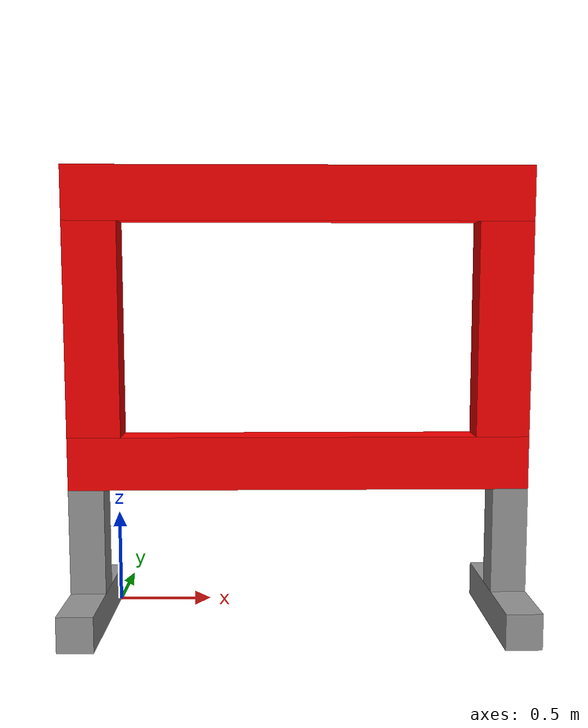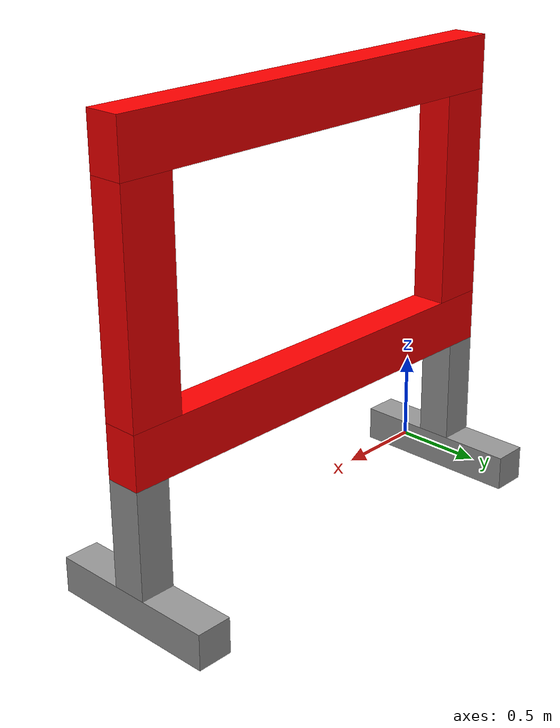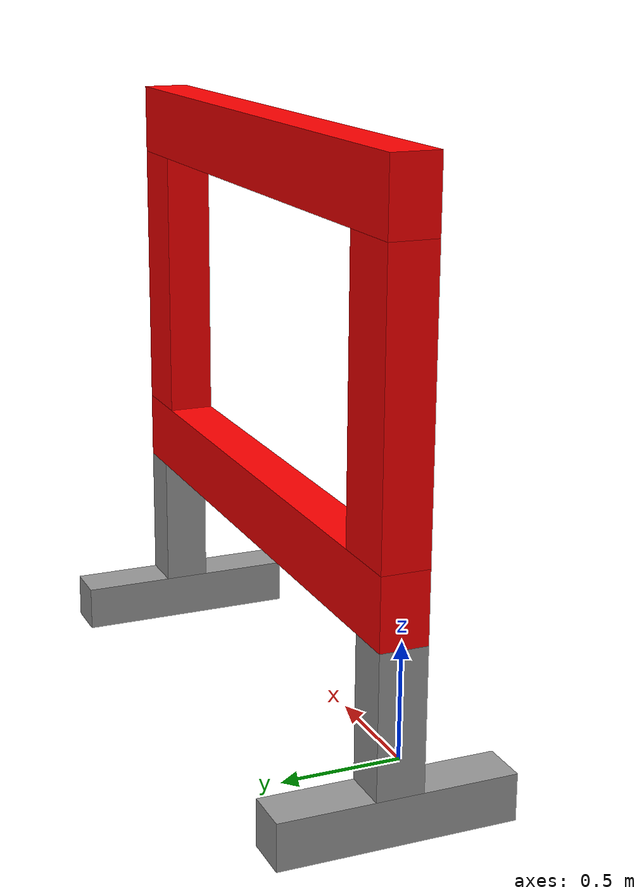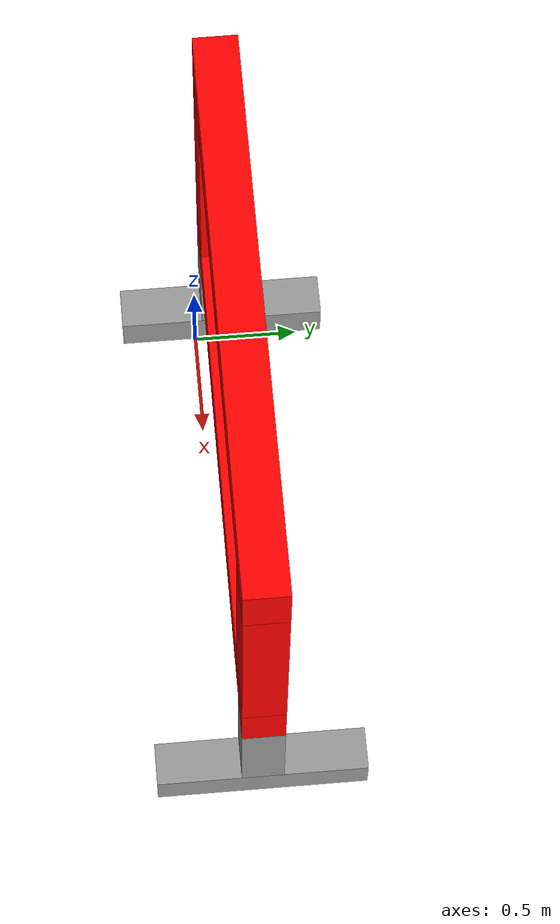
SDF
<?xml version='1.0'?>
<sdf version='1.6'>
  <model name='door_2_1.2'>
    <model name='door'>
      <link name='link_0'>
        <inertial>
          <mass>1</mass>
          <inertia>
            <ixx>0.166667</ixx>
            <ixy>0</ixy>
            <ixz>0</ixz>
            <iyy>0.166667</iyy>
            <iyz>0</iyz>
            <izz>0.166667</izz>
          </inertia>
          <pose frame=''>0 0 0 0 -0 0</pose>
        </inertial>
        <pose frame=''>-0.195931 0.139969 -0.0875 0 -0 0</pose>
        <gravity>1</gravity>
        <self_collide>0</self_collide>
        <kinematic>0</kinematic>
        <enable_wind>0</enable_wind>
        <visual name='visual'>
          <pose frame=''>0 0 0 0 -0 0</pose>
          <geometry>
            <box>
              <size>0.2 1 0.2</size>
            </box>
          </geometry>
          <material>
            <lighting>1</lighting>
            <script>
              <uri>file://media/materials/scripts/gazebo.material</uri>
              <name>Gazebo/Grey</name>
            </script>
            <shader type='pixel'>
              <normal_map>__default__</normal_map>
            </shader>
            <ambient>0.4 0.4 0.4 1</ambient>
            <diffuse>0.7 0.7 0.7 1</diffuse>
            <specular>0.01 0.01 0.01 1</specular>
            <emissive>0 0 0 1</emissive>
          </material>
          <transparency>0</transparency>
          <cast_shadows>1</cast_shadows>
        </visual>
        <collision name='collision'>
          <laser_retro>0</laser_retro>
          <max_contacts>10</max_contacts>
          <pose frame=''>0 0 0 0 -0 0</pose>
          <geometry>
            <box>
              <size>0.2 1 0.2</size>
            </box>
          </geometry>
          <surface>
            <friction>
              <ode>
                <mu>1</mu>
                <mu2>1</mu2>
                <fdir1>0 0 0</fdir1>
                <slip1>0</slip1>
                <slip2>0</slip2>
              </ode>
              <torsional>
                <coefficient>1</coefficient>
                <patch_radius>0</patch_radius>
                <surface_radius>0</surface_radius>
                <use_patch_radius>1</use_patch_radius>
                <ode>
                  <slip>0</slip>
                </ode>
              </torsional>
            </friction>
            <bounce>
              <restitution_coefficient>0</restitution_coefficient>
              <threshold>1e+06</threshold>
            </bounce>
            <contact>
              <collide_without_contact>0</collide_without_contact>
              <collide_without_contact_bitmask>1</collide_without_contact_bitmask>
              <collide_bitmask>1</collide_bitmask>
              <ode>
                <soft_cfm>0</soft_cfm>
                <soft_erp>0.2</soft_erp>
                <kp>1e+13</kp>
                <kd>1</kd>
                <max_vel>0.01</max_vel>
                <min_depth>0</min_depth>
              </ode>
              <bullet>
                <split_impulse>1</split_impulse>
                <split_impulse_penetration_threshold>-0.01</split_impulse_penetration_threshold>
                <soft_cfm>0</soft_cfm>
                <soft_erp>0.2</soft_erp>
                <kp>1e+13</kp>
                <kd>1</kd>
              </bullet>
            </contact>
          </surface>
        </collision>
      </link>
      <link name='link_0_clone'>
        <inertial>
          <mass>1</mass>
          <inertia>
            <ixx>0.166667</ixx>
            <ixy>0</ixy>
            <ixz>0</ixz>
            <iyy>0.166667</iyy>
            <iyz>0</iyz>
            <izz>0.166667</izz>
          </inertia>
          <pose frame=''>0 0 0 0 -0 0</pose>
        </inertial>
        <pose frame=''>2.20407 0.139969 -0.0875 0 -0 0</pose>
        <gravity>1</gravity>
        <self_collide>0</self_collide>
        <kinematic>0</kinematic>
        <enable_wind>0</enable_wind>
        <visual name='visual'>
          <pose frame=''>0 0 0 0 -0 0</pose>
          <geometry>
            <box>
              <size>0.2 1 0.2</size>
            </box>
          </geometry>
          <material>
            <lighting>1</lighting>
            <script>
              <uri>file://media/materials/scripts/gazebo.material</uri>
              <name>Gazebo/Grey</name>
            </script>
            <shader type='pixel'>
              <normal_map>__default__</normal_map>
            </shader>
            <ambient>0.4 0.4 0.4 1</ambient>
            <diffuse>0.7 0.7 0.7 1</diffuse>
            <specular>0.01 0.01 0.01 1</specular>
            <emissive>0 0 0 1</emissive>
          </material>
          <transparency>0</transparency>
          <cast_shadows>1</cast_shadows>
        </visual>
        <collision name='collision'>
          <laser_retro>0</laser_retro>
          <max_contacts>10</max_contacts>
          <pose frame=''>0 0 0 0 -0 0</pose>
          <geometry>
            <box>
              <size>0.2 1 0.2</size>
            </box>
          </geometry>
          <surface>
            <friction>
              <ode>
                <mu>1</mu>
                <mu2>1</mu2>
                <fdir1>0 0 0</fdir1>
                <slip1>0</slip1>
                <slip2>0</slip2>
              </ode>
              <torsional>
                <coefficient>1</coefficient>
                <patch_radius>0</patch_radius>
                <surface_radius>0</surface_radius>
                <use_patch_radius>1</use_patch_radius>
                <ode>
                  <slip>0</slip>
                </ode>
              </torsional>
            </friction>
            <bounce>
              <restitution_coefficient>0</restitution_coefficient>
              <threshold>1e+06</threshold>
            </bounce>
            <contact>
              <collide_without_contact>0</collide_without_contact>
              <collide_without_contact_bitmask>1</collide_without_contact_bitmask>
              <collide_bitmask>1</collide_bitmask>
              <ode>
                <soft_cfm>0</soft_cfm>
                <soft_erp>0.2</soft_erp>
                <kp>1e+13</kp>
                <kd>1</kd>
                <max_vel>0.01</max_vel>
                <min_depth>0</min_depth>
              </ode>
              <bullet>
                <split_impulse>1</split_impulse>
                <split_impulse_penetration_threshold>-0.01</split_impulse_penetration_threshold>
                <soft_cfm>0</soft_cfm>
                <soft_erp>0.2</soft_erp>
                <kp>1e+13</kp>
                <kd>1</kd>
              </bullet>
            </contact>
          </surface>
        </collision>
      </link>
      <link name='link_1'>
        <inertial>
          <mass>1</mass>
          <inertia>
            <ixx>0.166667</ixx>
            <ixy>0</ixy>
            <ixz>0</ixz>
            <iyy>0.166667</iyy>
            <iyz>0</iyz>
            <izz>0.166667</izz>
          </inertia>
          <pose frame=''>0 0 0 0 -0 0</pose>
        </inertial>
        <pose frame=''>-0.195931 0.139969 0.3125 0 -0 0</pose>
        <gravity>1</gravity>
        <self_collide>0</self_collide>
        <kinematic>0</kinematic>
        <enable_wind>0</enable_wind>
        <visual name='visual'>
          <pose frame=''>0 0 0 0 -0 0</pose>
          <geometry>
            <box>
              <size>0.2 0.2 0.6</size>
            </box>
          </geometry>
          <material>
            <lighting>1</lighting>
            <script>
              <uri>file://media/materials/scripts/gazebo.material</uri>
              <name>Gazebo/Grey</name>
            </script>
            <shader type='pixel'>
              <normal_map>__default__</normal_map>
            </shader>
            <ambient>0.4 0.4 0.4 1</ambient>
            <diffuse>0.7 0.7 0.7 1</diffuse>
            <specular>0.01 0.01 0.01 1</specular>
            <emissive>0 0 0 1</emissive>
          </material>
          <transparency>0</transparency>
          <cast_shadows>1</cast_shadows>
        </visual>
        <collision name='collision'>
          <laser_retro>0</laser_retro>
          <max_contacts>10</max_contacts>
          <pose frame=''>0 0 0 0 -0 0</pose>
          <geometry>
            <box>
              <size>0.2 0.2 0.6</size>
            </box>
          </geometry>
          <surface>
            <friction>
              <ode>
                <mu>1</mu>
                <mu2>1</mu2>
                <fdir1>0 0 0</fdir1>
                <slip1>0</slip1>
                <slip2>0</slip2>
              </ode>
              <torsional>
                <coefficient>1</coefficient>
                <patch_radius>0</patch_radius>
                <surface_radius>0</surface_radius>
                <use_patch_radius>1</use_patch_radius>
                <ode>
                  <slip>0</slip>
                </ode>
              </torsional>
            </friction>
            <bounce>
              <restitution_coefficient>0</restitution_coefficient>
              <threshold>1e+06</threshold>
            </bounce>
            <contact>
              <collide_without_contact>0</collide_without_contact>
              <collide_without_contact_bitmask>1</collide_without_contact_bitmask>
              <collide_bitmask>1</collide_bitmask>
              <ode>
                <soft_cfm>0</soft_cfm>
                <soft_erp>0.2</soft_erp>
                <kp>1e+13</kp>
                <kd>1</kd>
                <max_vel>0.01</max_vel>
                <min_depth>0</min_depth>
              </ode>
              <bullet>
                <split_impulse>1</split_impulse>
                <split_impulse_penetration_threshold>-0.01</split_impulse_penetration_threshold>
                <soft_cfm>0</soft_cfm>
                <soft_erp>0.2</soft_erp>
                <kp>1e+13</kp>
                <kd>1</kd>
              </bullet>
            </contact>
          </surface>
        </collision>
      </link>
      <link name='link_1_clone'>
        <inertial>
          <mass>1</mass>
          <inertia>
            <ixx>0.166667</ixx>
            <ixy>0</ixy>
            <ixz>0</ixz>
            <iyy>0.166667</iyy>
            <iyz>0</iyz>
            <izz>0.166667</izz>
          </inertia>
          <pose frame=''>0 0 0 0 -0 0</pose>
        </inertial>
        <pose frame=''>2.20407 0.139969 0.3125 0 -0 0</pose>
        <gravity>1</gravity>
        <self_collide>0</self_collide>
        <kinematic>0</kinematic>
        <enable_wind>0</enable_wind>
        <visual name='visual'>
          <pose frame=''>0 0 0 0 -0 0</pose>
          <geometry>
            <box>
              <size>0.2 0.2 0.6</size>
            </box>
          </geometry>
          <material>
            <lighting>1</lighting>
            <script>
              <uri>file://media/materials/scripts/gazebo.material</uri>
              <name>Gazebo/Grey</name>
            </script>
            <shader type='pixel'>
              <normal_map>__default__</normal_map>
            </shader>
            <ambient>0.4 0.4 0.4 1</ambient>
            <diffuse>0.7 0.7 0.7 1</diffuse>
            <specular>0.01 0.01 0.01 1</specular>
            <emissive>0 0 0 1</emissive>
          </material>
          <transparency>0</transparency>
          <cast_shadows>1</cast_shadows>
        </visual>
        <collision name='collision'>
          <laser_retro>0</laser_retro>
          <max_contacts>10</max_contacts>
          <pose frame=''>0 0 0 0 -0 0</pose>
          <geometry>
            <box>
              <size>0.2 0.2 0.6</size>
            </box>
          </geometry>
          <surface>
            <friction>
              <ode>
                <mu>1</mu>
                <mu2>1</mu2>
                <fdir1>0 0 0</fdir1>
                <slip1>0</slip1>
                <slip2>0</slip2>
              </ode>
              <torsional>
                <coefficient>1</coefficient>
                <patch_radius>0</patch_radius>
                <surface_radius>0</surface_radius>
                <use_patch_radius>1</use_patch_radius>
                <ode>
                  <slip>0</slip>
                </ode>
              </torsional>
            </friction>
            <bounce>
              <restitution_coefficient>0</restitution_coefficient>
              <threshold>1e+06</threshold>
            </bounce>
            <contact>
              <collide_without_contact>0</collide_without_contact>
              <collide_without_contact_bitmask>1</collide_without_contact_bitmask>
              <collide_bitmask>1</collide_bitmask>
              <ode>
                <soft_cfm>0</soft_cfm>
                <soft_erp>0.2</soft_erp>
                <kp>1e+13</kp>
                <kd>1</kd>
                <max_vel>0.01</max_vel>
                <min_depth>0</min_depth>
              </ode>
              <bullet>
                <split_impulse>1</split_impulse>
                <split_impulse_penetration_threshold>-0.01</split_impulse_penetration_threshold>
                <soft_cfm>0</soft_cfm>
                <soft_erp>0.2</soft_erp>
                <kp>1e+13</kp>
                <kd>1</kd>
              </bullet>
            </contact>
          </surface>
        </collision>
      </link>
      <link name='link_2'>
        <inertial>
          <mass>1</mass>
          <inertia>
            <ixx>0.166667</ixx>
            <ixy>0</ixy>
            <ixz>0</ixz>
            <iyy>0.166667</iyy>
            <iyz>0</iyz>
            <izz>0.166667</izz>
          </inertia>
          <pose frame=''>0 0 0 0 -0 0</pose>
        </inertial>
        <pose frame=''>1.00407 0.139969 0.7625 0 -0 0</pose>
        <gravity>1</gravity>
        <self_collide>0</self_collide>
        <kinematic>0</kinematic>
        <enable_wind>0</enable_wind>
        <visual name='visual'>
          <pose frame=''>0 0 0 0 -0 0</pose>
          <geometry>
            <box>
              <size>2.6 0.2 0.3</size>
            </box>
          </geometry>
          <material>
            <lighting>1</lighting>
            <script>
              <uri>file://media/materials/scripts/gazebo.material</uri>
              <name>Gazebo/Grey</name>
            </script>
            <shader type='pixel'>
              <normal_map>__default__</normal_map>
            </shader>
            <ambient>1 0 0 1</ambient>
            <diffuse>0.7 0.7 0.7 1</diffuse>
            <specular>0.01 0.01 0.01 1</specular>
            <emissive>0 0 0 1</emissive>
          </material>
          <transparency>0</transparency>
          <cast_shadows>1</cast_shadows>
        </visual>
        <collision name='collision'>
          <laser_retro>0</laser_retro>
          <max_contacts>10</max_contacts>
          <pose frame=''>0 0 0 0 -0 0</pose>
          <geometry>
            <box>
              <size>2.6 0.2 0.3</size>
            </box>
          </geometry>
          <surface>
            <friction>
              <ode>
                <mu>1</mu>
                <mu2>1</mu2>
                <fdir1>0 0 0</fdir1>
                <slip1>0</slip1>
                <slip2>0</slip2>
              </ode>
              <torsional>
                <coefficient>1</coefficient>
                <patch_radius>0</patch_radius>
                <surface_radius>0</surface_radius>
                <use_patch_radius>1</use_patch_radius>
                <ode>
                  <slip>0</slip>
                </ode>
              </torsional>
            </friction>
            <bounce>
              <restitution_coefficient>0</restitution_coefficient>
              <threshold>1e+06</threshold>
            </bounce>
            <contact>
              <collide_without_contact>0</collide_without_contact>
              <collide_without_contact_bitmask>1</collide_without_contact_bitmask>
              <collide_bitmask>1</collide_bitmask>
              <ode>
                <soft_cfm>0</soft_cfm>
                <soft_erp>0.2</soft_erp>
                <kp>1e+13</kp>
                <kd>1</kd>
                <max_vel>0.01</max_vel>
                <min_depth>0</min_depth>
              </ode>
              <bullet>
                <split_impulse>1</split_impulse>
                <split_impulse_penetration_threshold>-0.01</split_impulse_penetration_threshold>
                <soft_cfm>0</soft_cfm>
                <soft_erp>0.2</soft_erp>
                <kp>1e+13</kp>
                <kd>1</kd>
              </bullet>
            </contact>
          </surface>
        </collision>
      </link>
      <link name='link_2_clone'>
        <inertial>
          <mass>1</mass>
          <inertia>
            <ixx>0.166667</ixx>
            <ixy>0</ixy>
            <ixz>0</ixz>
            <iyy>0.166667</iyy>
            <iyz>0</iyz>
            <izz>0.166667</izz>
          </inertia>
          <pose frame=''>0 0 0 0 -0 0</pose>
        </inertial>
        <pose frame=''>1.00407 0.139969 2.2625 0 -0 0</pose>
        <gravity>1</gravity>
        <self_collide>0</self_collide>
        <kinematic>0</kinematic>
        <enable_wind>0</enable_wind>
        <visual name='visual'>
          <pose frame=''>0 0 0 0 -0 0</pose>
          <geometry>
            <box>
              <size>2.6 0.2 0.3</size>
            </box>
          </geometry>
          <material>
            <lighting>1</lighting>
            <script>
              <uri>file://media/materials/scripts/gazebo.material</uri>
              <name>Gazebo/Grey</name>
            </script>
            <shader type='pixel'>
              <normal_map>__default__</normal_map>
            </shader>
            <ambient>1 0 0 1</ambient>
            <diffuse>0 0 0 1</diffuse>
            <specular>0 0 0 1</specular>
            <emissive>0 0 0 1</emissive>
          </material>
          <transparency>0</transparency>
          <cast_shadows>1</cast_shadows>
        </visual>
        <collision name='collision'>
          <laser_retro>0</laser_retro>
          <max_contacts>10</max_contacts>
          <pose frame=''>0 0 0 0 -0 0</pose>
          <geometry>
            <box>
              <size>2.6 0.2 0.3</size>
            </box>
          </geometry>
          <surface>
            <friction>
              <ode>
                <mu>1</mu>
                <mu2>1</mu2>
                <fdir1>0 0 0</fdir1>
                <slip1>0</slip1>
                <slip2>0</slip2>
              </ode>
              <torsional>
                <coefficient>1</coefficient>
                <patch_radius>0</patch_radius>
                <surface_radius>0</surface_radius>
                <use_patch_radius>1</use_patch_radius>
                <ode>
                  <slip>0</slip>
                </ode>
              </torsional>
            </friction>
            <bounce>
              <restitution_coefficient>0</restitution_coefficient>
              <threshold>1e+06</threshold>
            </bounce>
            <contact>
              <collide_without_contact>0</collide_without_contact>
              <collide_without_contact_bitmask>1</collide_without_contact_bitmask>
              <collide_bitmask>1</collide_bitmask>
              <ode>
                <soft_cfm>0</soft_cfm>
                <soft_erp>0.2</soft_erp>
                <kp>1e+13</kp>
                <kd>1</kd>
                <max_vel>0.01</max_vel>
                <min_depth>0</min_depth>
              </ode>
              <bullet>
                <split_impulse>1</split_impulse>
                <split_impulse_penetration_threshold>-0.01</split_impulse_penetration_threshold>
                <soft_cfm>0</soft_cfm>
                <soft_erp>0.2</soft_erp>
                <kp>1e+13</kp>
                <kd>1</kd>
              </bullet>
            </contact>
          </surface>
        </collision>
      </link>
      <link name='link_3'>
        <inertial>
          <mass>1</mass>
          <inertia>
            <ixx>0.166667</ixx>
            <ixy>0</ixy>
            <ixz>0</ixz>
            <iyy>0.166667</iyy>
            <iyz>0</iyz>
            <izz>0.166667</izz>
          </inertia>
          <pose frame=''>0 0 0 0 -0 0</pose>
        </inertial>
        <pose frame=''>-0.145931 0.139969 1.5125 0 -0 0</pose>
        <gravity>1</gravity>
        <self_collide>0</self_collide>
        <kinematic>0</kinematic>
        <enable_wind>0</enable_wind>
        <visual name='visual'>
          <pose frame=''>0 0 0 0 -0 0</pose>
          <geometry>
            <box>
              <size>0.3 0.2 1.2</size>
            </box>
          </geometry>
          <material>
            <lighting>1</lighting>
            <script>
              <uri>file://media/materials/scripts/gazebo.material</uri>
              <name>Gazebo/Grey</name>
            </script>
            <shader type='pixel'>
              <normal_map>__default__</normal_map>
            </shader>
            <ambient>1 0 0 1</ambient>
            <diffuse>0.7 0.7 0.7 1</diffuse>
            <specular>0.01 0.01 0.01 1</specular>
            <emissive>0 0 0 1</emissive>
          </material>
          <transparency>0</transparency>
          <cast_shadows>1</cast_shadows>
        </visual>
        <collision name='collision'>
          <laser_retro>0</laser_retro>
          <max_contacts>10</max_contacts>
          <pose frame=''>0 0 0 0 -0 0</pose>
          <geometry>
            <box>
              <size>0.3 0.2 1.2</size>
            </box>
          </geometry>
          <surface>
            <friction>
              <ode>
                <mu>1</mu>
                <mu2>1</mu2>
                <fdir1>0 0 0</fdir1>
                <slip1>0</slip1>
                <slip2>0</slip2>
              </ode>
              <torsional>
                <coefficient>1</coefficient>
                <patch_radius>0</patch_radius>
                <surface_radius>0</surface_radius>
                <use_patch_radius>1</use_patch_radius>
                <ode>
                  <slip>0</slip>
                </ode>
              </torsional>
            </friction>
            <bounce>
              <restitution_coefficient>0</restitution_coefficient>
              <threshold>1e+06</threshold>
            </bounce>
            <contact>
              <collide_without_contact>0</collide_without_contact>
              <collide_without_contact_bitmask>1</collide_without_contact_bitmask>
              <collide_bitmask>1</collide_bitmask>
              <ode>
                <soft_cfm>0</soft_cfm>
                <soft_erp>0.2</soft_erp>
                <kp>1e+13</kp>
                <kd>1</kd>
                <max_vel>0.01</max_vel>
                <min_depth>0</min_depth>
              </ode>
              <bullet>
                <split_impulse>1</split_impulse>
                <split_impulse_penetration_threshold>-0.01</split_impulse_penetration_threshold>
                <soft_cfm>0</soft_cfm>
                <soft_erp>0.2</soft_erp>
                <kp>1e+13</kp>
                <kd>1</kd>
              </bullet>
            </contact>
          </surface>
        </collision>
      </link>
      <link name='link_3_clone'>
        <inertial>
          <mass>1</mass>
          <inertia>
            <ixx>0.166667</ixx>
            <ixy>0</ixy>
            <ixz>0</ixz>
            <iyy>0.166667</iyy>
            <iyz>0</iyz>
            <izz>0.166667</izz>
          </inertia>
          <pose frame=''>0 0 0 0 -0 0</pose>
        </inertial>
        <pose frame=''>2.15407 0.139969 1.5125 0 -0 0</pose>
        <gravity>1</gravity>
        <self_collide>0</self_collide>
        <kinematic>0</kinematic>
        <enable_wind>0</enable_wind>
        <visual name='visual'>
          <pose frame=''>0 0 0 0 -0 0</pose>
          <geometry>
            <box>
              <size>0.3 0.2 1.2</size>
            </box>
          </geometry>
          <material>
            <lighting>1</lighting>
            <script>
              <uri>file://media/materials/scripts/gazebo.material</uri>
              <name>Gazebo/Grey</name>
            </script>
            <shader type='pixel'>
              <normal_map>__default__</normal_map>
            </shader>
            <ambient>1 0 0 1</ambient>
            <diffuse>0.7 0.7 0.7 1</diffuse>
            <specular>0.01 0.01 0.01 1</specular>
            <emissive>0 0 0 1</emissive>
          </material>
          <transparency>0</transparency>
          <cast_shadows>1</cast_shadows>
        </visual>
        <collision name='collision'>
          <laser_retro>0</laser_retro>
          <max_contacts>10</max_contacts>
          <pose frame=''>0 0 0 0 -0 0</pose>
          <geometry>
            <box>
              <size>0.3 0.2 1.2</size>
            </box>
          </geometry>
          <surface>
            <friction>
              <ode>
                <mu>1</mu>
                <mu2>1</mu2>
                <fdir1>0 0 0</fdir1>
                <slip1>0</slip1>
                <slip2>0</slip2>
              </ode>
              <torsional>
                <coefficient>1</coefficient>
                <patch_radius>0</patch_radius>
                <surface_radius>0</surface_radius>
                <use_patch_radius>1</use_patch_radius>
                <ode>
                  <slip>0</slip>
                </ode>
              </torsional>
            </friction>
            <bounce>
              <restitution_coefficient>0</restitution_coefficient>
              <threshold>1e+06</threshold>
            </bounce>
            <contact>
              <collide_without_contact>0</collide_without_contact>
              <collide_without_contact_bitmask>1</collide_without_contact_bitmask>
              <collide_bitmask>1</collide_bitmask>
              <ode>
                <soft_cfm>0</soft_cfm>
                <soft_erp>0.2</soft_erp>
                <kp>1e+13</kp>
                <kd>1</kd>
                <max_vel>0.01</max_vel>
                <min_depth>0</min_depth>
              </ode>
              <bullet>
                <split_impulse>1</split_impulse>
                <split_impulse_penetration_threshold>-0.01</split_impulse_penetration_threshold>
                <soft_cfm>0</soft_cfm>
                <soft_erp>0.2</soft_erp>
                <kp>1e+13</kp>
                <kd>1</kd>
              </bullet>
            </contact>
          </surface>
        </collision>
      </link>
      <joint name='link_0_JOINT_0' type='fixed'>
        <parent>link_0</parent>
        <child>link_0_clone</child>
        <pose frame=''>0 0 0 0 -0 0</pose>
        <physics>
          <ode>
            <limit>
              <cfm>0</cfm>
              <erp>0.2</erp>
            </limit>
            <suspension>
              <cfm>0</cfm>
              <erp>0.2</erp>
            </suspension>
          </ode>
        </physics>
      </joint>
      <joint name='link_0_JOINT_1' type='fixed'>
        <parent>link_0</parent>
        <child>link_1</child>
        <pose frame=''>0 0 0 0 -0 0</pose>
        <physics>
          <ode>
            <limit>
              <cfm>0</cfm>
              <erp>0.2</erp>
            </limit>
            <suspension>
              <cfm>0</cfm>
              <erp>0.2</erp>
            </suspension>
          </ode>
        </physics>
      </joint>
      <joint name='link_0_clone_JOINT_2' type='fixed'>
        <parent>link_0_clone</parent>
        <child>link_1_clone</child>
        <pose frame=''>0 0 0 0 -0 0</pose>
        <physics>
          <ode>
            <limit>
              <cfm>0</cfm>
              <erp>0.2</erp>
            </limit>
            <suspension>
              <cfm>0</cfm>
              <erp>0.2</erp>
            </suspension>
          </ode>
        </physics>
      </joint>
      <joint name='link_1_JOINT_3' type='fixed'>
        <parent>link_1</parent>
        <child>link_2</child>
        <pose frame=''>0 0 0 0 -0 0</pose>
        <physics>
          <ode>
            <limit>
              <cfm>0</cfm>
              <erp>0.2</erp>
            </limit>
            <suspension>
              <cfm>0</cfm>
              <erp>0.2</erp>
            </suspension>
          </ode>
        </physics>
      </joint>
      <joint name='link_2_JOINT_4' type='fixed'>
        <parent>link_2</parent>
        <child>link_3</child>
        <pose frame=''>0 0 0 0 -0 0</pose>
        <physics>
          <ode>
            <limit>
              <cfm>0</cfm>
              <erp>0.2</erp>
            </limit>
            <suspension>
              <cfm>0</cfm>
              <erp>0.2</erp>
            </suspension>
          </ode>
        </physics>
      </joint>
      <joint name='link_2_JOINT_5' type='fixed'>
        <parent>link_2</parent>
        <child>link_3_clone</child>
        <pose frame=''>0 0 0 0 -0 0</pose>
        <physics>
          <ode>
            <limit>
              <cfm>0</cfm>
              <erp>0.2</erp>
            </limit>
            <suspension>
              <cfm>0</cfm>
              <erp>0.2</erp>
            </suspension>
          </ode>
        </physics>
      </joint>
      <joint name='link_2_JOINT_6' type='fixed'>
        <parent>link_2</parent>
        <child>link_2_clone</child>
        <pose frame=''>0 0 0 0 -0 0</pose>
        <physics>
          <ode>
            <limit>
              <cfm>0</cfm>
              <erp>0.2</erp>
            </limit>
            <suspension>
              <cfm>0</cfm>
              <erp>0.2</erp>
            </suspension>
          </ode>
        </physics>
      </joint>
      <static>0</static>
      <allow_auto_disable>1</allow_auto_disable>
      <pose frame=''>-0 -0 -0 0 -0 0</pose>
    </model>
    <static>0</static>
    <allow_auto_disable>1</allow_auto_disable>
  </model>
</sdf>
